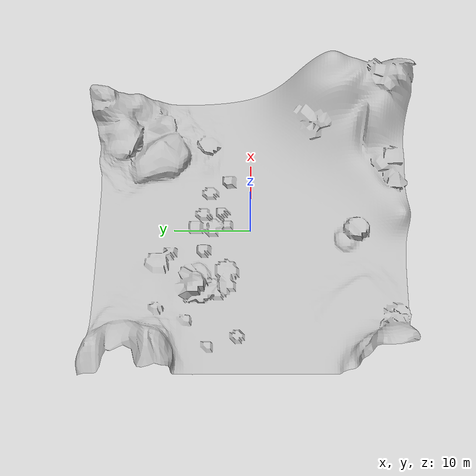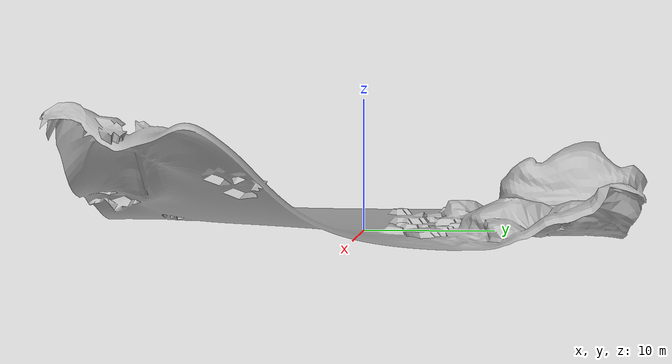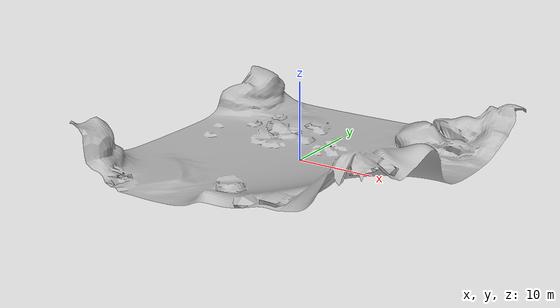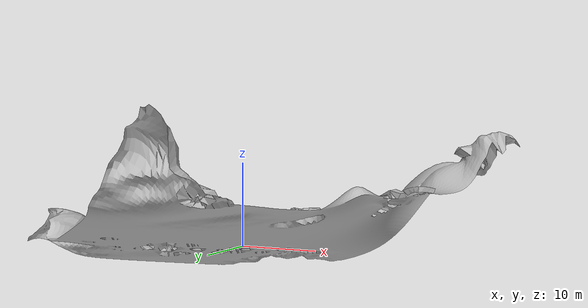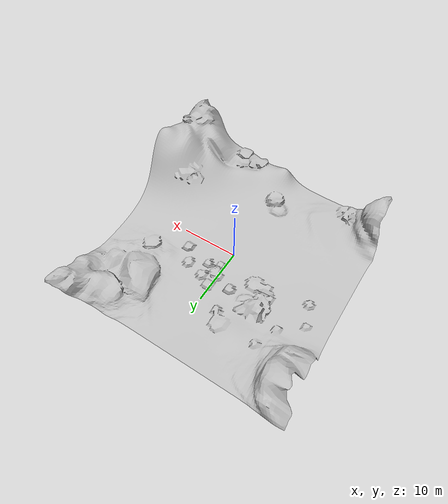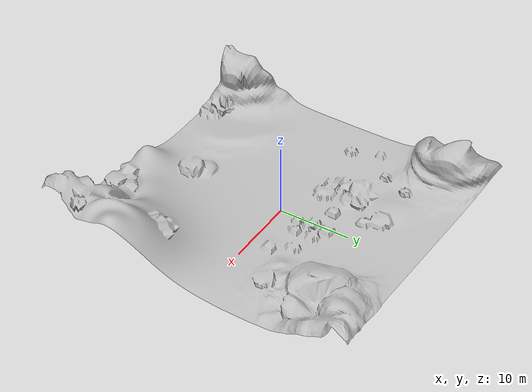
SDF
<?xml version='1.0' encoding='utf-8'?>
<sdf version="1.6">
    <model name="mars_surface">
        <static>true</static>
        <pose>0 0 0 1.57 0 0</pose>
        <link name="base_link">
            <collision name="base_link_collision">
                <geometry>
                    <mesh>
                        <uri>models://mars_surface/resources/mars_surface.obj</uri>
                        <scale>1 1 1</scale>
                    </mesh>
                </geometry>
            </collision>
            <visual name="base_link_visual">
                <geometry>
                    <mesh>
                        <uri>models://mars_surface/resources/mars_surface.obj</uri>
                        <scale>1 1 1</scale>
                    </mesh>
                </geometry>
            </visual>
        </link>
    </model>
</sdf>
